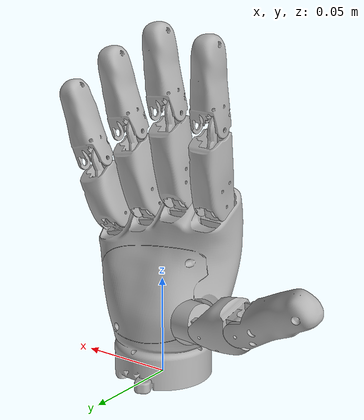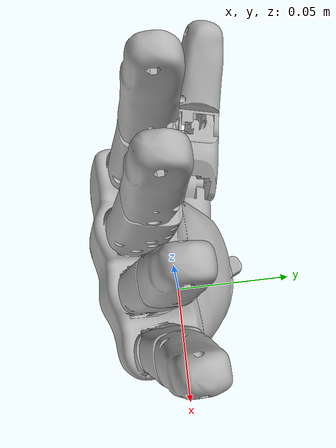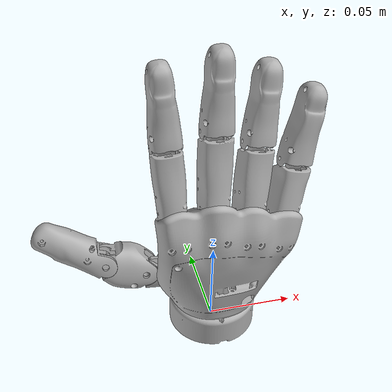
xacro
<?xml version="1.0" ?>
<robot name="pipet_hand_mark7" xmlns:xacro="http://www.ros.org/wiki/xacro">

  <xacro:arg name="use_mock_hardware" default="false"/>
  <xacro:arg name="port" default="/dev/ttyACM0"/>

  <xacro:include filename="$(find pipet_hand_mark7_description)/urdf/materials.xacro" />
  <xacro:include filename="$(find pipet_hand_mark7_description)/urdf/pipet_hand_mark7.trans" />
  <xacro:include filename="$(find pipet_hand_mark7_description)/urdf/pipet_hand_mark7.gazebo" />

  <link name="base_link">
    <inertial>
      <origin xyz="0.001555 -0.004795 0.047623" rpy="0 0 0"/>
      <mass value="0.35"/>
      <inertia ixx="0.000718" iyy="0.000888" izz="0.000438" ixy="-1.4e-05" iyz="0.000117" ixz="1.8e-05"/>
    </inertial>
    <visual><origin xyz="0 0 0" rpy="0 0 0"/><geometry><mesh filename="package://pipet_hand_mark7_description/meshes/base_link.stl" scale="0.001 0.001 0.001"/></geometry><material name="silver"/></visual>
    <collision><origin xyz="0 0 0" rpy="0 0 0"/><geometry><mesh filename="package://pipet_hand_mark7_description/meshes/base_link.stl" scale="0.001 0.001 0.001"/></geometry></collision>
  </link>

  <xacro:macro name="default_inertial" params="mass">
    <inertial><mass value="${mass}" /><inertia ixx="0.000001" ixy="0.0" ixz="0.0" iyy="0.000001" iyz="0.0" izz="0.000001" /></inertial>
  </xacro:macro>

  <link name="pinky_bottom_1"><xacro:default_inertial mass="0.03"/><visual><origin xyz="-0.031928 0.005928 -0.078169" rpy="0 0 0"/><geometry><mesh filename="package://pipet_hand_mark7_description/meshes/pinky_bottom_1.stl" scale="0.001 0.001 0.001"/></geometry><material name="silver"/></visual><collision><origin xyz="-0.031928 0.005928 -0.078169" rpy="0 0 0"/><geometry><mesh filename="package://pipet_hand_mark7_description/meshes/pinky_bottom_1.stl" scale="0.001 0.001 0.001"/></geometry></collision></link>
  <link name="pinky_top_1"><xacro:default_inertial mass="0.03"/><visual><origin xyz="-0.037439 -0.000714 -0.107655" rpy="0 0 0"/><geometry><mesh filename="package://pipet_hand_mark7_description/meshes/pinky_top_1.stl" scale="0.001 0.001 0.001"/></geometry><material name="silver"/></visual><collision><origin xyz="-0.037439 -0.000714 -0.107655" rpy="0 0 0"/><geometry><mesh filename="package://pipet_hand_mark7_description/meshes/pinky_top_1.stl" scale="0.001 0.001 0.001"/></geometry></collision></link>
  <link name="ringer_bottom_1"><xacro:default_inertial mass="0.04"/><visual><origin xyz="-0.011471 0.009409 -0.085649" rpy="0 0 0"/><geometry><mesh filename="package://pipet_hand_mark7_description/meshes/ringer_bottom_1.stl" scale="0.001 0.001 0.001"/></geometry><material name="silver"/></visual><collision><origin xyz="-0.011471 0.009409 -0.085649" rpy="0 0 0"/><geometry><mesh filename="package://pipet_hand_mark7_description/meshes/ringer_bottom_1.stl" scale="0.001 0.001 0.001"/></geometry></collision></link>
  <link name="ringer_top_1"><xacro:default_inertial mass="0.03"/><visual><origin xyz="-0.015717 0.00084 -0.123103" rpy="0 0 0"/><geometry><mesh filename="package://pipet_hand_mark7_description/meshes/ringer_top_1.stl" scale="0.001 0.001 0.001"/></geometry><material name="silver"/></visual><collision><origin xyz="-0.015717 0.00084 -0.123103" rpy="0 0 0"/><geometry><mesh filename="package://pipet_hand_mark7_description/meshes/ringer_top_1.stl" scale="0.001 0.001 0.001"/></geometry></collision></link>
  <link name="middle_bottom_1"><xacro:default_inertial mass="0.05"/><visual><origin xyz="0.008513 0.011057 -0.092109" rpy="0 0 0"/><geometry><mesh filename="package://pipet_hand_mark7_description/meshes/middle_bottom_1.stl" scale="0.001 0.001 0.001"/></geometry><material name="silver"/></visual><collision><origin xyz="0.008513 0.011057 -0.092109" rpy="0 0 0"/><geometry><mesh filename="package://pipet_hand_mark7_description/meshes/middle_bottom_1.stl" scale="0.001 0.001 0.001"/></geometry></collision></link>
  <link name="middle_top_1"><xacro:default_inertial mass="0.03"/><visual><origin xyz="0.006949 0.002365 -0.133647" rpy="0 0 0"/><geometry><mesh filename="package://pipet_hand_mark7_description/meshes/middle_top_1.stl" scale="0.001 0.001 0.001"/></geometry><material name="silver"/></visual><collision><origin xyz="0.006949 0.002365 -0.133647" rpy="0 0 0"/><geometry><mesh filename="package://pipet_hand_mark7_description/meshes/middle_top_1.stl" scale="0.001 0.001 0.001"/></geometry></collision></link>
  <link name="index_bottom_1"><xacro:default_inertial mass="0.04"/><visual><origin xyz="0.030299 0.008352 -0.089777" rpy="0 0 0"/><geometry><mesh filename="package://pipet_hand_mark7_description/meshes/index_bottom_1.stl" scale="0.001 0.001 0.001"/></geometry><material name="silver"/></visual><collision><origin xyz="0.030299 0.008352 -0.089777" rpy="0 0 0"/><geometry><mesh filename="package://pipet_hand_mark7_description/meshes/index_bottom_1.stl" scale="0.001 0.001 0.001"/></geometry></collision></link>
  <link name="index_top_1"><xacro:default_inertial mass="0.03"/><visual><origin xyz="0.032614 0.001276 -0.127706" rpy="0 0 0"/><geometry><mesh filename="package://pipet_hand_mark7_description/meshes/index_top_1.stl" scale="0.001 0.001 0.001"/></geometry><material name="silver"/></visual><collision><origin xyz="0.032614 0.001276 -0.127706" rpy="0 0 0"/><geometry><mesh filename="package://pipet_hand_mark7_description/meshes/index_top_1.stl" scale="0.001 0.001 0.001"/></geometry></collision></link>
  <link name="thumb_bottom_1"><xacro:default_inertial mass="0.05"/><visual><origin xyz="0.007376 -0.005575 -0.034463" rpy="0 0 0"/><geometry><mesh filename="package://pipet_hand_mark7_description/meshes/thumb_bottom_1.stl" scale="0.001 0.001 0.001"/></geometry><material name="silver"/></visual><collision><origin xyz="0.007376 -0.005575 -0.034463" rpy="0 0 0"/><geometry><mesh filename="package://pipet_hand_mark7_description/meshes/thumb_bottom_1.stl" scale="0.001 0.001 0.001"/></geometry></collision></link>
  <link name="thumb_middle_1"><xacro:default_inertial mass="0.04"/><visual><origin xyz="0.036417 -0.014922 -0.033958" rpy="0 0 0"/><geometry><mesh filename="package://pipet_hand_mark7_description/meshes/thumb_middle_1.stl" scale="0.001 0.001 0.001"/></geometry><material name="silver"/></visual><collision><origin xyz="0.036417 -0.014922 -0.033958" rpy="0 0 0"/><geometry><mesh filename="package://pipet_hand_mark7_description/meshes/thumb_middle_1.stl" scale="0.001 0.001 0.001"/></geometry></collision></link>
  <link name="thumb_top_1"><xacro:default_inertial mass="0.05"/><visual><origin xyz="0.05907 -0.016082 -0.041644" rpy="0 0 0"/><geometry><mesh filename="package://pipet_hand_mark7_description/meshes/thumb_top_1.stl" scale="0.001 0.001 0.001"/></geometry><material name="silver"/></visual><collision><origin xyz="0.05907 -0.016082 -0.041644" rpy="0 0 0"/><geometry><mesh filename="package://pipet_hand_mark7_description/meshes/thumb_top_1.stl" scale="0.001 0.001 0.001"/></geometry></collision></link>

  <joint name="base_pinky" type="revolute">
    <origin xyz="0.031928 -0.005928 0.078169" rpy="0 0 0"/><parent link="base_link"/><child link="pinky_bottom_1"/>
    <axis xyz="-0.972127 -0.033995 0.231975"/>
    <limit upper="1.396" lower="0.0" effort="20" velocity="2.0"/>
  </joint>
  <joint name="pinky_bottom_top" type="revolute">
    <origin xyz="0.005511 0.006642 0.029486" rpy="0 0 0"/><parent link="pinky_bottom_1"/><child link="pinky_top_1"/>
    <axis xyz="-0.972127 -0.033995 0.231975"/>
    <mimic joint="base_pinky" multiplier="1.0" offset="0"/>
    <limit upper="1.396" lower="0.0" effort="0" velocity="2.0"/>
  </joint>

  <joint name="base_ringer" type="revolute">
    <origin xyz="0.011471 -0.009409 0.085649" rpy="0 0 0"/><parent link="base_link"/><child link="ringer_bottom_1"/>
    <axis xyz="-0.991562 -0.005724 0.129511"/>
    <limit upper="1.396" lower="0.0" effort="20" velocity="2.0"/>
  </joint>
  <joint name="ringer_bottom_top_rev" type="revolute">
    <origin xyz="0.004246 0.008569 0.037454" rpy="0 0 0"/><parent link="ringer_bottom_1"/><child link="ringer_top_1"/>
    <axis xyz="-0.991562 -0.005724 0.129511"/>
    <mimic joint="base_ringer" multiplier="1.0" offset="0"/>
    <limit upper="1.396" lower="0.0" effort="0" velocity="4.0"/>
  </joint>

  <joint name="base_middle" type="revolute">
    <origin xyz="-0.008513 -0.011057 0.092109" rpy="0 0 0"/><parent link="base_link"/><child link="middle_bottom_1"/>
    <axis xyz="-0.998722 0.009815 0.049588"/>
    <limit upper="1.396" lower="0.0" effort="20" velocity="2.0"/>
  </joint>
  <joint name="middle_bottom_top_rev" type="revolute">
    <origin xyz="0.001564 0.008692 0.041538" rpy="0 0 0"/><parent link="middle_bottom_1"/><child link="middle_top_1"/>
    <axis xyz="-0.998722 0.009815 0.049588"/>
    <mimic joint="base_middle" multiplier="1.0" offset="0"/>
    <limit upper="1.396" lower="0.0" effort="0" velocity="4.0"/>
  </joint>

  <joint name="base_index" type="revolute">
    <origin xyz="-0.030299 -0.008352 0.089777" rpy="0 0 0"/><parent link="base_link"/><child link="index_bottom_1"/>
    <axis xyz="-0.997898 0.03262 -0.055994"/>
    <limit upper="1.396" lower="0.0" effort="20" velocity="2.0"/>
  </joint>
  <joint name="index_bottom_top_rev" type="revolute">
    <origin xyz="-0.002315 0.007076 0.037929" rpy="0 0 0"/><parent link="index_bottom_1"/><child link="index_top_1"/>
    <axis xyz="-0.997898 0.03262 -0.055994"/>
    <mimic joint="base_index" multiplier="1.0" offset="0"/>
    <limit upper="1.396" lower="0.0" effort="0" velocity="4.0"/>
  </joint>

  <joint name="base_thumb" type="revolute">
    <origin xyz="-0.007376 0.005575 0.034463" rpy="0 0 0"/><parent link="base_link"/><child link="thumb_bottom_1"/>
    <axis xyz="-0.995619 0.092558 -0.013228"/>
    <limit upper="1.396" lower="0.0" effort="25" velocity="2.0"/>
  </joint>
  <joint name="thumb_bottom_middle_rev" type="revolute">
    <origin xyz="-0.029041 0.009347 -0.000505" rpy="0 0 0"/><parent link="thumb_bottom_1"/><child link="thumb_middle_1"/>
    <axis xyz="-0.092166 -0.947763 0.305369"/><limit upper="0.0" lower="-0.872665" effort="30" velocity="2.0"/>
  </joint>
  <joint name="thumb_middle_top_rev" type="revolute">
    <origin xyz="-0.022653 0.00116 0.007686" rpy="0 0 0"/><parent link="thumb_middle_1"/><child link="thumb_top_1"/>
    <axis xyz="-0.092165 -0.947763 0.305369"/>
    <mimic joint="thumb_bottom_middle_rev" multiplier="1.0" offset="0"/>
    <limit upper="0.0" lower="-0.872665" effort="0" velocity="2.0"/>
  </joint>

  <!-- ===== ros2_control Hardware Interface ===== -->
  <!-- 조인트 순서 = Mark7 finger 인덱스 순서 (B2~B7)                      -->
  <!-- fingers[0] B2 Thumb Flex  → thumb_bottom_middle_rev (실제 굽힘)    -->
  <!-- fingers[1] B3 Index       → base_index                            -->
  <!-- fingers[2] B4 Middle      → base_middle                           -->
  <!-- fingers[3] B5 Ring        → base_ringer                           -->
  <!-- fingers[4] B6 Little      → base_pinky                            -->
  <!-- fingers[5] B7 Thumb Ab    → base_thumb (실제 외전)                 -->
  <ros2_control name="mark7_hardware" type="system">
    <hardware>
      <plugin>pipet_hand_mark7_driver/Mark7SystemHardware</plugin>
      <param name="port">$(arg port)</param>
      <param name="use_mock_hardware">$(arg use_mock_hardware)</param>
    </hardware>

    <!-- B2: Thumb Flex -->
    <joint name="thumb_bottom_middle_rev">
      <command_interface name="position"/>
      <state_interface name="position"/>
      <state_interface name="current"/>
      <state_interface name="temperature"/>
    </joint>

    <!-- B3: Index -->
    <joint name="base_index">
      <command_interface name="position"/>
      <state_interface name="position"/>
      <state_interface name="current"/>
      <state_interface name="temperature"/>
    </joint>

    <!-- B4: Middle -->
    <joint name="base_middle">
      <command_interface name="position"/>
      <state_interface name="position"/>
      <state_interface name="current"/>
      <state_interface name="temperature"/>
    </joint>

    <!-- B5: Ring -->
    <joint name="base_ringer">
      <command_interface name="position"/>
      <state_interface name="position"/>
      <state_interface name="current"/>
      <state_interface name="temperature"/>
    </joint>

    <!-- B6: Little (Pinky) -->
    <joint name="base_pinky">
      <command_interface name="position"/>
      <state_interface name="position"/>
      <state_interface name="current"/>
      <state_interface name="temperature"/>
    </joint>

    <!-- B7: Thumb Ab -->
    <joint name="base_thumb">
      <command_interface name="position"/>
      <state_interface name="position"/>
      <state_interface name="current"/>
      <state_interface name="temperature"/>
    </joint>
  </ros2_control>

</robot>

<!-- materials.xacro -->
<robot name="pipet_hand_mark7_pinky_bak" xmlns:xacro="http://www.ros.org/wiki/xacro" >

<material name="silver">
  <color rgba="0.700 0.700 0.700 1.000"/>
</material>

</robot>

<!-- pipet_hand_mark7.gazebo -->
<robot name="pipet_hand_mark7_20251226" xmlns:xacro="http://www.ros.org/wiki/xacro" >

<xacro:property name="body_color" value="Gazebo/Silver" />

<gazebo>
  <plugin name="control" filename="libgazebo_ros_control.so"/>
</gazebo>
<gazebo reference="base_link">
  <material>${body_color}</material>
  <mu1>0.2</mu1>
  <mu2>0.2</mu2>
  <selfCollide>true</selfCollide>
  <gravity>true</gravity>
</gazebo>

<gazebo reference="pinky_bottom_1">
  <material>${body_color}</material>
  <mu1>0.2</mu1>
  <mu2>0.2</mu2>
  <selfCollide>true</selfCollide>
</gazebo>

<gazebo reference="ringer_bottom_1">
  <material>${body_color}</material>
  <mu1>0.2</mu1>
  <mu2>0.2</mu2>
  <selfCollide>true</selfCollide>
</gazebo>

<gazebo reference="ringer_top_1">
  <material>${body_color}</material>
  <mu1>0.2</mu1>
  <mu2>0.2</mu2>
  <selfCollide>true</selfCollide>
</gazebo>

<gazebo reference="middle_top_1">
  <material>${body_color}</material>
  <mu1>0.2</mu1>
  <mu2>0.2</mu2>
  <selfCollide>true</selfCollide>
</gazebo>

<gazebo reference="middle_bottom_1">
  <material>${body_color}</material>
  <mu1>0.2</mu1>
  <mu2>0.2</mu2>
  <selfCollide>true</selfCollide>
</gazebo>

<gazebo reference="index_bottom_1">
  <material>${body_color}</material>
  <mu1>0.2</mu1>
  <mu2>0.2</mu2>
  <selfCollide>true</selfCollide>
</gazebo>

<gazebo reference="index_top_1">
  <material>${body_color}</material>
  <mu1>0.2</mu1>
  <mu2>0.2</mu2>
  <selfCollide>true</selfCollide>
</gazebo>

<gazebo reference="thumb_bottom_1">
  <material>${body_color}</material>
  <mu1>0.2</mu1>
  <mu2>0.2</mu2>
  <selfCollide>true</selfCollide>
</gazebo>

<gazebo reference="thumb_middle_1">
  <material>${body_color}</material>
  <mu1>0.2</mu1>
  <mu2>0.2</mu2>
  <selfCollide>true</selfCollide>
</gazebo>

<gazebo reference="thumb_top_1">
  <material>${body_color}</material>
  <mu1>0.2</mu1>
  <mu2>0.2</mu2>
  <selfCollide>true</selfCollide>
</gazebo>

<gazebo reference="pinky_top_1">
  <material>${body_color}</material>
  <mu1>0.2</mu1>
  <mu2>0.2</mu2>
  <selfCollide>true</selfCollide>
</gazebo>

</robot>
